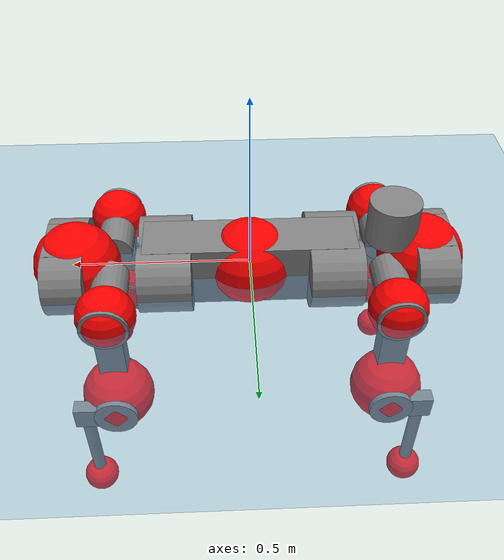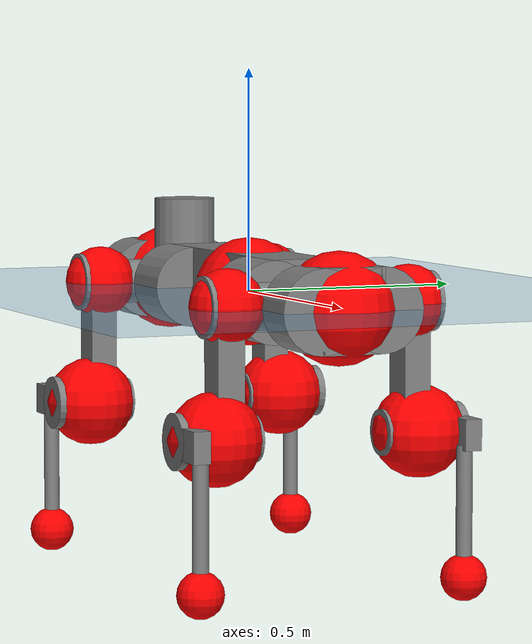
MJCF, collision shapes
<mujoco model="anymal_c">
  <compiler angle="radian" assetdir="assets" balanceinertia="true" inertiafromgeom="false"/>

  <option timestep="0.005" density="1.2" viscosity="2e-05"/>

  <size nkey="1"/>

  <visual>
    <quality shadowsize="8192"/>
    <map shadowclip="0.5"/>
  </visual>

  <default>
    <default class="/">
      <material specular="0" shininess="0.25"/>
      <geom contype="0" conaffinity="0" group="1" solref="-1000 -80"/>
      <site size="0.01 0.005 0.005" group="5"/>
      <general forcelimited="true" forcerange="-80 80" biastype="affine" gainprm="80" biasprm="0 -80 -2"/>
      <default class="anymal_c">
        <joint armature="0.01" damping="0.01" frictionloss="0.1"/>
        <default class="visual">
          <geom type="mesh" group="2"/>
          <default class="visual_zflip"/>
        </default>
        <default class="collision">
          <geom type="cylinder" group="3"/>
          <default class="foot">
            <geom size="0.03 0 0" type="sphere" condim="6" priority="1" friction="0.8 0.02 0.01" solimp="0.015 1 0.03"/>
          </default>
        </default>
      </default>
      <default class="reward_collision_sphere">
        <geom group="5" rgba="1 0 0 1"/>
      </default>
    </default>
  </default>

  <asset>
    <texture type="skybox" colorspace="auto" name="//unnamed_texture_0" builtin="gradient" rgb1="0.95 0.95 0.95" rgb2="0.95 0.95 0.95" width="100" height="600"/>
    <texture type="2d" colorspace="auto" name="texplane" builtin="checker" rgb1="0.345 0.575 0.748" rgb2="0.345 0.575 0.748" markrgb="1 1 1" width="512" height="512"/>
    <texture type="2d" colorspace="linear" name="base" file="base.png"/>
    <texture type="2d" colorspace="linear" name="top_shell" file="top_shell.png"/>
    <texture type="2d" colorspace="linear" name="bottom_shell" file="bottom_shell.png"/>
    <texture type="2d" colorspace="linear" name="remote" file="remote.png"/>
    <texture type="2d" colorspace="linear" name="hatch" file="hatch.png"/>
    <texture type="2d" colorspace="linear" name="handle" file="handle.png"/>
    <texture type="2d" colorspace="linear" name="face" file="face.png"/>
    <texture type="2d" colorspace="linear" name="battery" file="battery.png"/>
    <texture type="2d" colorspace="linear" name="lidar_cage" file="lidar_cage.png"/>
    <texture type="2d" colorspace="linear" name="depth_camera" file="depth_camera.png"/>
    <texture type="2d" colorspace="linear" name="wide_angle_camera" file="wide_angle_camera.png"/>
    <texture type="2d" colorspace="linear" name="lidar" file="lidar.png"/>
    <texture type="2d" colorspace="linear" name="drive" file="drive.png"/>
    <texture type="2d" colorspace="linear" name="hip_l" file="hip_l.png"/>
    <texture type="2d" colorspace="linear" name="shank_l" file="shank_l.png"/>
    <texture type="2d" colorspace="linear" name="foot" file="foot.png"/>
    <texture type="2d" colorspace="linear" name="thigh" file="thigh.png"/>
    <texture type="2d" colorspace="linear" name="shank_r" file="shank_r.png"/>
    <texture type="2d" colorspace="linear" name="hip_r" file="hip_r.png"/>
    <material name="MatPlane" class="/" texture="texplane" texuniform="true" texrepeat="2 2" specular="0.9" shininess="0.5"/>
    <material name="black_plastic" class="/" rgba="0.007 0.007 0.007 1"/>
    <material name="green" class="/" rgba="0.052 0.178 0.033 1"/>
    <material name="red" class="/" rgba="0.178 0.006 0.005 1"/>
    <material name="yellow" class="/" rgba="0.178 0.119 0.006 1"/>
    <material name="lwl" class="/" rgba="0.8 0.8 0.8 1"/>
    <material name="base" class="/" texture="base"/>
    <material name="top_shell" class="/" texture="top_shell"/>
    <material name="bottom_shell" class="/" texture="bottom_shell"/>
    <material name="hip_l" class="/" texture="hip_l"/>
    <material name="thigh" class="/" texture="thigh"/>
    <material name="shank_l" class="/" texture="shank_l"/>
    <material name="foot" class="/" texture="foot"/>
    <material name="hip_r" class="/" texture="hip_r"/>
    <material name="shank" class="/" texture="shank_r"/>
    <material name="hatch" class="/" texture="hatch"/>
    <material name="remote" class="/" texture="remote"/>
    <material name="handle" class="/" texture="handle"/>
    <material name="face" class="/" texture="face"/>
    <material name="depth_camera" class="/" texture="depth_camera"/>
    <material name="wide_angle_camera" class="/" texture="wide_angle_camera"/>
    <material name="battery" class="/" texture="battery"/>
    <material name="lidar_cage" class="/" texture="lidar_cage"/>
    <material name="lidar" class="/" texture="lidar"/>
    <material name="drive" class="/" texture="drive"/>
    <mesh name="base_0" class="/" file="base_0.obj"/>
    <mesh name="base_1" class="/" file="base_1.obj"/>
    <mesh name="base_2" class="/" file="base_2.obj"/>
    <mesh name="base_3" class="/" file="base_3.obj"/>
    <mesh name="base_4" class="/" file="base_4.obj"/>
    <mesh name="base_5" class="/" file="base_5.obj"/>
    <mesh name="top_shell" class="/" file="top_shell.obj"/>
    <mesh name="bottom_shell" class="/" file="bottom_shell.obj"/>
    <mesh name="remote" class="/" file="remote.obj"/>
    <mesh name="handle" class="/" file="handle.obj"/>
    <mesh name="face" class="/" file="face.obj"/>
    <mesh name="wide_angle_camera" class="/" file="wide_angle_camera.obj"/>
    <mesh name="depth_camera" class="/" file="depth_camera.obj"/>
    <mesh name="battery" class="/" file="battery.obj"/>
    <mesh name="lidar_cage" class="/" file="lidar_cage.obj"/>
    <mesh name="lidar" class="/" file="lidar.obj"/>
    <mesh name="drive" class="/" file="drive.obj"/>
    <mesh name="hip_l" class="/" file="hip_l.obj"/>
    <mesh name="thigh" class="/" file="thigh.obj"/>
    <mesh name="shank_l" class="/" file="shank_l.obj"/>
    <mesh name="foot" class="/" file="foot.obj"/>
    <mesh name="hip_r" class="/" file="hip_r.obj"/>
    <mesh name="hatch" class="/" file="hatch.obj"/>
    <mesh name="shank_r" class="/" file="shank_r.obj"/>
  </asset>

  <worldbody>
    <geom name="floor" class="/" size="100 100 0.125" type="plane" group="0" material="MatPlane"/>
    <light name="toplight_shadow" class="/" pos="0 0 5" dir="0.0990148 0.0990148 -0.990148" type="directional" ambient="0.04 0.04 0.04" diffuse="0.55 0.55 0.55" specular="0.12 0.12 0.12"/>
    <light name="toplight_fill" class="/" pos="0 0 5" dir="0.0990148 0.0990148 -0.990148" type="directional" castshadow="false" ambient="0.04 0.04 0.04" diffuse="0.3 0.3 0.3" specular="0.08 0.08 0.08"/>
    <body name="trunk" childclass="anymal_c" pos="0.00100002 0.000218911 -0.000972835" quat="1 5.04068e-05 -0.00018064 -0.000188965">
      <inertial pos="-5.37387e-05 -0.00224146 0.0486128" quat="0.49941 0.499275 0.50332 0.497979" mass="20.9182" diaginertia="0.953735 0.579763 0.205076"/>
      <joint name="//unnamed_joint_0" type="free" armature="0" damping="0" frictionloss="0"/>
      <geom name="//unnamed_geom_1" class="visual" material="green" mesh="base_0"/>
      <geom name="//unnamed_geom_2" class="visual" material="yellow" mesh="base_1"/>
      <geom name="//unnamed_geom_3" class="visual" material="red" mesh="base_2"/>
      <geom name="//unnamed_geom_4" class="visual" material="black_plastic" mesh="base_3"/>
      <geom name="//unnamed_geom_5" class="visual" material="lwl" mesh="base_4"/>
      <geom name="//unnamed_geom_6" class="visual" material="base" mesh="base_5"/>
      <geom name="trunk_1" class="collision" size="0.29552 0.0713323 0.091713" type="box"/>
      <geom name="trunk_2" class="collision" size="0.091713 0.0738799" pos="0.23544 0.0689479 0" quat="0.707107 0 0.707107 0"/>
      <geom name="trunk_3" class="collision" size="0.091713 0.0738799" pos="-0.23544 0.0689479 0" quat="0.707107 0 0.707107 0"/>
      <geom name="trunk_4" class="collision" size="0.091713 0.0738799" pos="0.23544 -0.0689479 0" quat="0.707107 0 0.707107 0"/>
      <geom name="trunk_5" class="collision" size="0.091713 0.0738799" pos="-0.23544 -0.0689479 0" quat="0.707107 0 0.707107 0"/>
      <geom name="//unnamed_geom_12" class="visual" material="top_shell" mesh="top_shell"/>
      <geom name="//unnamed_geom_13" class="visual" material="bottom_shell" mesh="bottom_shell"/>
      <geom name="//unnamed_geom_14" class="visual" material="remote" mesh="remote"/>
      <geom name="//unnamed_geom_15" class="visual" material="handle" mesh="handle"/>
      <geom name="//unnamed_geom_16" class="visual" pos="0.448689 0 0" quat="1 0 0 0" material="face" mesh="face"/>
      <geom name="trunk_6" class="collision" size="0.0560468 0.0713323 0.091713" pos="0.508225 0 0" type="box"/>
      <geom name="//unnamed_geom_18" class="collision" size="0.091713 0.0560468" pos="0.508225 0.0689479 0" quat="0.707107 0 0.707107 0"/>
      <geom name="//unnamed_geom_19" class="collision" size="0.091713 0.0560468" pos="0.508225 -0.0689479 0" quat="0.707107 0 0.707107 0"/>
      <geom name="//unnamed_geom_20" class="visual" pos="0.499724 0 -0.0281921" quat="0.965926 0 0.258819 0" material="depth_camera" mesh="depth_camera"/>
      <geom name="//unnamed_geom_21" class="visual" pos="0.555313 0 0.014815" material="wide_angle_camera" mesh="wide_angle_camera"/>
      <geom name="//unnamed_geom_22" class="visual_zflip" pos="-0.448689 0 0" quat="0 0 0 1" material="face" mesh="face"/>
      <geom name="trunk_7" class="collision" size="0.0560468 0.0713323 0.091713" pos="-0.508225 0 0" quat="0 0 0 1" type="box"/>
      <geom name="//unnamed_geom_24" class="collision" size="0.091713 0.0560468" pos="-0.508225 -0.0689479 0" quat="0 -0.707107 0 0.707107"/>
      <geom name="//unnamed_geom_25" class="collision" size="0.091713 0.0560468" pos="-0.508225 0.0689479 0" quat="0 -0.707107 0 0.707107"/>
      <geom name="//unnamed_geom_26" class="visual" pos="-0.499724 0 -0.0281921" quat="0 -0.258819 0 0.965926" material="depth_camera" mesh="depth_camera"/>
      <geom name="//unnamed_geom_27" class="visual_zflip" pos="-0.555313 0 0.014815" quat="0 0 0 1" material="wide_angle_camera" mesh="wide_angle_camera"/>
      <geom name="//unnamed_geom_28" class="visual" material="battery" mesh="battery"/>
      <geom name="//unnamed_geom_29" class="visual" pos="0 0.0740274 0.0294548" quat="0.683013 -0.183013 0.183013 0.683013" material="depth_camera" mesh="depth_camera"/>
      <geom name="//unnamed_geom_30" class="visual" pos="0 -0.0740274 0.0294548" quat="0.683013 0.183013 0.183013 -0.683013" material="depth_camera" mesh="depth_camera"/>
      <geom name="//unnamed_geom_31" class="visual" pos="-0.394023 0 0.0727391" quat="1 0 0 0" material="lidar_cage" mesh="lidar_cage"/>
      <geom name="trunk_8" class="collision" size="0.0713323 0.061142" pos="-0.394023 0 0.132118"/>
      <geom name="//unnamed_geom_33" class="visual" pos="-0.394023 -3.83097e-05 0.140728" quat="0.707107 0 0 -0.707107" material="lidar" mesh="lidar"/>
      <geom name="//unnamed_geom_34" class="visual" pos="0.324636 0.102439 -8.06759e-11" quat="0.258819 0.965926 0 0" material="drive" mesh="drive"/>
      <geom name="//unnamed_geom_35" class="visual" pos="0.324636 -0.102439 8.06759e-11" quat="0.258819 -0.965926 0 0" material="drive" mesh="drive"/>
      <geom name="//unnamed_geom_36" class="visual" pos="-0.324636 0.102439 8.06759e-11" quat="0 0 0.965926 -0.258819" material="drive" mesh="drive"/>
      <geom name="//unnamed_geom_37" class="visual" pos="-0.324636 -0.102439 -8.06759e-11" quat="0 0 -0.965926 -0.258819" material="drive" mesh="drive"/>
      <geom name="//unnamed_geom_38" class="visual" pos="0.125568 0 0.0722442" quat="1 0 0 0" material="hatch" mesh="hatch"/>
      <geom name="//unnamed_geom_39" class="reward_collision_sphere" size="0.122284"/>
      <geom name="//unnamed_geom_40" class="reward_collision_sphere" size="0.122284" pos="0.487117 0 0"/>
      <geom name="//unnamed_geom_41" class="reward_collision_sphere" size="0.122284" pos="-0.487117 0 0"/>
      <site name="imu" pos="0.281392 0.00781688 0.0337869" size="0.0101903"/>
      <camera name="track" pos="0 -1.96994 0" quat="0.707107 0.707107 0 0" mode="trackcom"/>
      <camera name="ego_camera" pos="0.487117 0 -0.0395859" quat="-0.5 -0.5 0.5 0.5"/>
      <body name="LF_HIP" pos="0.323706 0.101391 -0.00049875" quat="0.258844 0.965919 1.10231e-05 5.47888e-05">
        <inertial pos="0.0615117 -0.016146 -0.00858764" quat="-0.128195 0.70969 -0.135075 0.679456" mass="2.84153" diaginertia="0.0083922 0.00431203 0.0030286"/>
        <joint name="LF_HAA" pos="0 0 0" axis="0.999988 0.00406834 -0.00285834" range="-0.718342 0.475208" armature="0.0104041" damping="0.0122769" frictionloss="0.0973429"/>
        <geom name="//unnamed_geom_42" class="visual" pos="0 -4.7458e-06 7.79493e-07" quat="0.258819 -0.965926 0 0" material="hip_l" mesh="hip_l"/>
        <geom name="//unnamed_geom_43" class="visual" pos="0.0648407 -0.077286 -0.0446557" quat="0.183013 -0.683013 0.683013 0.183013" material="drive" mesh="drive"/>
        <geom name="//unnamed_geom_44" class="collision" size="0.0509517 0.0713323" pos="0.0648407 -0.01178 -0.00683351" quat="-0.353553 -0.612372 0.612372 -0.353553"/>
        <body name="LF_THIGH" pos="0.0651171 -0.0694373 -0.0413506" quat="0.182615 -0.683808 0.682431 0.182611">
          <inertial pos="0.0340507 1.51189e-05 -0.243034" quat="0.993179 0.00245717 -0.0823398 0.0825218" mass="3.18403" diaginertia="0.044714 0.026654 0.00389609"/>
          <joint name="LF_HFE" pos="0 0 0" axis="0.999998 0.00171931 -0.00031303" stiffness="0.00345115" range="-3.10227 3.15405" armature="0.0107163" damping="0.01621" frictionloss="0.100924"/>
          <geom name="//unnamed_geom_45" class="visual" pos="0.0019401 3.05714e-06 0" quat="0.707107 0 0 -0.707107" material="thigh" mesh="thigh"/>
          <geom name="//unnamed_geom_46" class="collision" size="0.0662371 0.0407613" pos="0.0432993 0 0" quat="0.5 0.5 -0.5 -0.5"/>
          <geom name="//unnamed_geom_47" class="collision" size="0.0382137 0.030571 0.144004" pos="0.0324745 0 -0.139851" quat="0.707107 0 0 -0.707107" type="box"/>
          <geom name="//unnamed_geom_48" class="visual" pos="0.108573 0 -0.282049" quat="1 0 0 0" material="drive" mesh="drive"/>
          <geom name="//unnamed_geom_49" class="collision" size="0.0509517 0.0713323" pos="0.0327992 0 -0.282049" quat="0.707107 0 0.707107 0"/>
          <geom name="//unnamed_geom_50" class="reward_collision_sphere" size="0.0815226" pos="0.027062 0 0"/>
          <body name="LF_SHANK" pos="0.108415 0.00183765 -0.283021" quat="1 -2.96489e-05 2.40133e-05 -0.00041385">
            <inertial pos="0.00616679 -0.0611337 -0.0794798" quat="0.992996 -0.115318 -0.000633795 -0.0256937" mass="0.624413" diaginertia="0.0148308 0.00865795 0.00105871"/>
            <joint name="LF_KFE" pos="0 0 0" axis="1 0.000342885 0.000605352" range="-3.12513 3.13291" armature="0.00970919" damping="0.0120421" frictionloss="0.100528"/>
            <geom name="//unnamed_geom_51" class="visual" pos="0.000632624 0.00337318 0" quat="0.707107 0 0 -0.707107" material="shank_l" mesh="shank_l"/>
            <geom name="LF_kfe_act" class="collision" size="0.061142 0.0203807" pos="0.0216496 0 0" quat="0.5 0.5 -0.5 -0.5"/>
            <geom name="//unnamed_geom_53" class="collision" size="0.0585934 0.0343924 0.0193616" pos="0.0216496 -0.0566348 0" quat="0.5 0.5 -0.5 -0.5" type="box"/>
            <geom name="//unnamed_geom_54" class="visual" pos="0.0141262 -0.0855411 -0.334471" quat="0.382683 0 0 -0.92388" material="foot" mesh="foot"/>
            <geom name="LF_calf" class="collision" size="0.0178331 0.14394" pos="0.0141264 -0.0866281 -0.167236" quat="0.707107 0 0 -0.707107"/>
            <geom name="LF_foot" class="foot" size="0.0300805" pos="0.0141264 -0.0866281 -0.312204" quat="0.707107 0 0 -0.707107"/>
            <geom name="//unnamed_geom_57" class="reward_collision_sphere" size="0.101903" pos="-0.0541241 0 0"/>
            <geom name="//unnamed_geom_58" class="reward_collision_sphere" size="0.0509517" pos="0.0141264 -0.0866281 -0.312204"/>
            <site name="LF_foot" class="foot" pos="0.0141264 -0.0866281 -0.312204" quat="0.707107 0 0 -0.707107" size="0.0101903"/>
          </body>
        </body>
      </body>
      <body name="RF_HIP" pos="0.322735 -0.10248 0.0015435" quat="0.258928 -0.965897 0.000118755 -3.32093e-05">
        <inertial pos="0.0608825 0.0128259 -0.00915289" quat="0.13765 0.678308 0.14043 0.707976" mass="2.90949" diaginertia="0.0084846 0.00467602 0.00305354"/>
        <joint name="RF_HAA" pos="0 0 0" axis="0.999979 -0.00559908 0.00316461" range="-0.497178 0.717176" armature="0.0102008" damping="0.00266304" frictionloss="0.0973011"/>
        <geom name="//unnamed_geom_59" class="visual" pos="0 4.74576e-06 7.79491e-07" quat="0.258819 0.965926 0 0" material="hip_r" mesh="hip_r"/>
        <geom name="//unnamed_geom_60" class="visual" pos="0.0648407 0.077286 -0.0446557" quat="0.183013 0.683013 0.683013 -0.183013" material="drive" mesh="drive"/>
        <geom name="//unnamed_geom_61" class="collision" size="0.0509517 0.0713323" pos="0.0648407 0.01178 -0.00683351" quat="-0.353553 0.612372 0.612372 0.353553"/>
        <body name="RF_THIGH" pos="0.0651937 0.0718319 -0.0436454" quat="0.183746 0.683114 0.682765 -0.182822">
          <inertial pos="0.0358813 0.0010178 -0.242936" quat="0.992816 -0.0053211 -0.0817282 0.0872252" mass="3.34049" diaginertia="0.0449313 0.0272499 0.00412301"/>
          <joint name="RF_HFE" pos="0 0 0" axis="0.999999 -0.00119982 -0.000687528" stiffness="8.63161e-05" range="-3.16164 3.1491" armature="0.00983712" damping="0.0117385" frictionloss="0.0984289"/>
          <geom name="//unnamed_geom_62" class="visual" pos="0.0019401 3.05714e-06 0" quat="0.707107 0 0 -0.707107" material="thigh" mesh="thigh"/>
          <geom name="//unnamed_geom_63" class="collision" size="0.0662371 0.0407613" pos="0.0432993 0 0" quat="0.5 0.5 0.5 0.5"/>
          <geom name="//unnamed_geom_64" class="collision" size="0.0382137 0.030571 0.144004" pos="0.0324745 0 -0.139851" quat="0.707107 0 0 0.707107" type="box"/>
          <geom name="//unnamed_geom_65" class="visual" pos="0.108573 0 -0.282049" quat="1 0 0 0" material="drive" mesh="drive"/>
          <geom name="//unnamed_geom_66" class="collision" size="0.0509517 0.0713323" pos="0.0327992 0 -0.282049" quat="0.707107 0 0.707107 0"/>
          <geom name="//unnamed_geom_67" class="reward_collision_sphere" size="0.0815226" pos="0.027062 0 0"/>
          <body name="RF_SHANK" pos="0.107939 -0.000520801 -0.280757" quat="1 0.000105413 -2.68834e-05 -3.17128e-05">
            <inertial pos="0.00467926 0.0604484 -0.0795644" quat="0.993042 0.112677 -0.0113489 0.0323031" mass="0.637944" diaginertia="0.0152752 0.00879139 0.00108257"/>
            <joint name="RF_KFE" pos="0 0 0" axis="1 -7.87014e-06 -3.47151e-05" range="-3.18355 3.12728" armature="0.0111607" damping="0.0211043" frictionloss="0.0993026"/>
            <geom name="//unnamed_geom_68" class="visual" pos="0.000632621 -0.00337318 0" quat="0.707107 0 0 0.707107" material="shank" mesh="shank_r"/>
            <geom name="RF_kfe_act" class="collision" size="0.061142 0.0203807" pos="0.0216496 0 0" quat="0.5 0.5 0.5 0.5"/>
            <geom name="//unnamed_geom_70" class="collision" size="0.0585934 0.0343924 0.0193616" pos="0.0216496 0.0566348 0" quat="0.5 0.5 0.5 0.5" type="box"/>
            <geom name="//unnamed_geom_71" class="visual" pos="0.0141265 0.0855411 -0.334471" quat="0.382683 0 0 0.92388" material="foot" mesh="foot"/>
            <geom name="RF_calf" class="collision" size="0.0178331 0.14394" pos="0.0141264 0.0866281 -0.167236" quat="0.707107 0 0 0.707107"/>
            <geom name="RF_foot" class="foot" size="0.02788" pos="0.0141264 0.0866281 -0.312204" quat="0.707107 0 0 0.707107"/>
            <geom name="//unnamed_geom_74" class="reward_collision_sphere" size="0.101903" pos="-0.0541241 0 0"/>
            <geom name="//unnamed_geom_75" class="reward_collision_sphere" size="0.0509517" pos="0.0141264 0.0866281 -0.312204"/>
            <site name="RF_foot" class="foot" pos="0.0141264 0.0866281 -0.312204" quat="0.707107 0 0 0.707107" size="0.0101903"/>
          </body>
        </body>
      </body>
      <body name="LH_HIP" pos="-0.321732 0.101612 -0.000854863" quat="0.000214226 -8.46662e-05 0.965974 -0.258641">
        <inertial pos="0.0615863 0.0157781 -0.0108001" quat="0.138783 0.674383 0.123715 0.714591" mass="3.0289" diaginertia="0.00927003 0.00475128 0.00321933"/>
        <joint name="LH_HAA" pos="0 0 0" axis="0.999944 0.00890494 0.00575519" range="-0.489958 0.704337" armature="0.0101068" damping="0" frictionloss="0.101352"/>
        <geom name="//unnamed_geom_76" class="visual" pos="0 4.74576e-06 7.79491e-07" quat="-0.258819 -0.965926 0 0" material="hip_r" mesh="hip_r"/>
        <geom name="//unnamed_geom_77" class="visual" pos="0.0648407 0.077286 -0.0446557" quat="0.183013 0.683013 0.683013 -0.183013" material="drive" mesh="drive"/>
        <geom name="//unnamed_geom_78" class="collision" size="0.0509517 0.0713323" pos="0.0648407 0.01178 -0.00683351" quat="-0.353553 0.612372 0.612372 0.353553"/>
        <body name="LH_THIGH" pos="0.0646144 0.0715467 -0.0429278" quat="0.183578 0.683015 0.682805 -0.183214">
          <inertial pos="0.0308152 -0.00110219 -0.24548" quat="0.99286 -0.00426987 -0.0811548 0.0873166" mass="3.23228" diaginertia="0.0428825 0.0276934 0.00387162"/>
          <joint name="LH_HFE" pos="0 0 0" axis="0.999998 9.67399e-05 -0.00190342" stiffness="0.00674453" range="-3.14009 3.12274" armature="0.00983495" damping="0.00115592" frictionloss="0.101336"/>
          <geom name="//unnamed_geom_79" class="visual" pos="0.0019401 3.05714e-06 0" quat="0.707107 0 0 -0.707107" material="thigh" mesh="thigh"/>
          <geom name="//unnamed_geom_80" class="collision" size="0.0662371 0.0407613" pos="0.0432993 0 0" quat="0.5 0.5 -0.5 -0.5"/>
          <geom name="//unnamed_geom_81" class="collision" size="0.0382137 0.030571 0.144004" pos="0.0324745 0 -0.139851" quat="0.707107 0 0 -0.707107" type="box"/>
          <geom name="//unnamed_geom_82" class="visual" pos="0.108573 0 -0.282049" quat="1 0 0 0" material="drive" mesh="drive"/>
          <geom name="//unnamed_geom_83" class="collision" size="0.0509517 0.0713323" pos="0.0327992 0 -0.282049" quat="0.707107 0 0.707107 0"/>
          <geom name="//unnamed_geom_84" class="reward_collision_sphere" size="0.0815226" pos="0.027062 0 0"/>
          <body name="LH_SHANK" pos="0.109 -0.001858 -0.28066" quat="1 4.80955e-06 -0.000139436 -7.3378e-05">
            <inertial pos="0.00577243 0.0624056 -0.0787858" quat="0.993228 0.113811 -0.00030204 0.0233584" mass="0.643179" diaginertia="0.0154152 0.00907552 0.00108271"/>
            <joint name="LH_KFE" pos="0 0 0" axis="0.999986 0.000569541 0.00525065" range="-3.10466 3.11942" armature="0.0114147" damping="0.0208259" frictionloss="0.0923152"/>
            <geom name="//unnamed_geom_85" class="visual" pos="0.000632621 -0.00337318 0" quat="-0.707107 0 0 -0.707107" material="shank" mesh="shank_r"/>
            <geom name="LH_kfe_act" class="collision" size="0.061142 0.0203807" pos="0.0216496 0 0" quat="0.5 0.5 -0.5 -0.5"/>
            <geom name="//unnamed_geom_87" class="collision" size="0.0585934 0.0343924 0.0193616" pos="0.0216496 0.0566348 0" quat="0.5 0.5 -0.5 -0.5" type="box"/>
            <geom name="//unnamed_geom_88" class="visual" pos="0.0141265 0.0855411 -0.334471" quat="-0.382683 0 0 -0.92388" material="foot" mesh="foot"/>
            <geom name="LH_calf" class="collision" size="0.0178331 0.14394" pos="0.0141264 0.0866281 -0.167236" quat="0.707107 0 0 -0.707107"/>
            <geom name="LH_foot" class="foot" size="0.0310644" pos="0.0141264 0.0866281 -0.312204" quat="0.707107 0 0 -0.707107"/>
            <geom name="//unnamed_geom_91" class="reward_collision_sphere" size="0.101903" pos="-0.0541241 0 0"/>
            <geom name="//unnamed_geom_92" class="reward_collision_sphere" size="0.0509517" pos="0.0141264 0.0866281 -0.312204"/>
            <site name="LH_foot" class="foot" pos="0.0141264 0.0866281 -0.312204" quat="0.707107 0 0 -0.707107" size="0.0101903"/>
          </body>
        </body>
      </body>
      <body name="RH_HIP" pos="-0.321951 -0.102912 9.98808e-05" quat="0.000178761 -9.93437e-05 -0.965916 -0.258857">
        <inertial pos="0.0609376 -0.0151859 -0.0109347" quat="-0.119792 0.716981 -0.130319 0.674244" mass="2.91382" diaginertia="0.00844489 0.00439591 0.00301915"/>
        <joint name="RH_HAA" pos="0 0 0" axis="0.999915 -0.0123519 0.00419565" range="-0.769067 0.493411" armature="0.0105217" damping="0.00936588" frictionloss="0.101395"/>
        <geom name="//unnamed_geom_93" class="visual" pos="0 -4.7458e-06 7.79493e-07" quat="-0.258819 0.965926 0 0" material="hip_l" mesh="hip_l"/>
        <geom name="//unnamed_geom_94" class="visual" pos="0.0648407 -0.077286 -0.0446557" quat="-0.183013 0.683013 -0.683013 -0.183013" material="drive" mesh="drive"/>
        <geom name="//unnamed_geom_95" class="collision" size="0.0509517 0.0713323" pos="0.0648407 -0.01178 -0.00683351" quat="0.353553 0.612372 -0.612372 0.353553"/>
        <body name="RH_THIGH" pos="0.0672456 -0.0719536 -0.043534" quat="-0.183282 0.683119 -0.683059 -0.182173">
          <inertial pos="0.0339897 0.000224172 -0.243908" quat="0.993242 -0.00431764 -0.0799158 0.0840603" mass="3.16559" diaginertia="0.0437804 0.0273222 0.00393866"/>
          <joint name="RH_HFE" pos="0 0 0" axis="0.999992 0.00144888 0.00366364" stiffness="0.00245947" range="-3.13232 3.16298" armature="0.0104249" damping="0.00801463" frictionloss="0.102464"/>
          <geom name="//unnamed_geom_96" class="visual" pos="0.0019401 3.05714e-06 0" quat="0.707107 0 0 -0.707107" material="thigh" mesh="thigh"/>
          <geom name="//unnamed_geom_97" class="collision" size="0.0662371 0.0407613" pos="0.0432993 0 0" quat="0.5 0.5 0.5 0.5"/>
          <geom name="//unnamed_geom_98" class="collision" size="0.0382137 0.030571 0.144004" pos="0.0324745 0 -0.139851" quat="0.707107 0 0 0.707107" type="box"/>
          <geom name="//unnamed_geom_99" class="visual" pos="0.108573 0 -0.282049" quat="1 0 0 0" material="drive" mesh="drive"/>
          <geom name="//unnamed_geom_100" class="collision" size="0.0509517 0.0713323" pos="0.0327992 0 -0.282049" quat="0.707107 0 0.707107 0"/>
          <geom name="//unnamed_geom_101" class="reward_collision_sphere" size="0.0815226" pos="0.027062 0 0"/>
          <body name="RH_SHANK" pos="0.10817 0.00208113 -0.28173" quat="0.999999 -0.000533277 -0.000681645 -0.000778684">
            <inertial pos="0.00784692 -0.0596154 -0.080876" quat="0.993461 -0.112561 0.00149927 -0.0190454" mass="0.635143" diaginertia="0.0151617 0.00857304 0.00106926"/>
            <joint name="RH_KFE" pos="0 0 0" axis="0.999995 0.00298305 -0.000652121" range="-3.13024 3.18057" armature="0.0101541" damping="0.0210749" frictionloss="0.0991017"/>
            <geom name="//unnamed_geom_102" class="visual" pos="0.000632624 0.00337318 0" quat="0.707107 0 0 -0.707107" material="shank_l" mesh="shank_l"/>
            <geom name="RH_kfe_act" class="collision" size="0.061142 0.0203807" pos="0.0216496 0 0" quat="0.5 0.5 0.5 0.5"/>
            <geom name="//unnamed_geom_104" class="collision" size="0.0585934 0.0343924 0.0193616" pos="0.0216496 -0.0566348 0" quat="0.5 0.5 0.5 0.5" type="box"/>
            <geom name="//unnamed_geom_105" class="visual" pos="0.0141262 -0.0855411 -0.334471" quat="0.382683 0 0 -0.92388" material="foot" mesh="foot"/>
            <geom name="RH_calf" class="collision" size="0.0178331 0.14394" pos="0.0141264 -0.0866281 -0.167236" quat="0.707107 0 0 0.707107"/>
            <geom name="RH_foot" class="foot" size="0.0280954" pos="0.0141264 -0.0866281 -0.312204" quat="0.707107 0 0 0.707107"/>
            <geom name="//unnamed_geom_108" class="reward_collision_sphere" size="0.101903" pos="-0.0541241 0 0"/>
            <geom name="//unnamed_geom_109" class="reward_collision_sphere" size="0.0509517" pos="0.0141264 -0.0866281 -0.312204"/>
            <site name="RH_foot" class="foot" pos="0.0141264 -0.0866281 -0.312204" quat="0.707107 0 0 0.707107" size="0.0101903"/>
          </body>
        </body>
      </body>
    </body>
  </worldbody>

  <contact>
    <pair class="/" geom1="floor" geom2="LF_foot" name="//unnamed_contact_0"/>
    <pair class="/" geom1="floor" geom2="RF_foot" name="//unnamed_contact_1"/>
    <pair class="/" geom1="floor" geom2="LH_foot" name="//unnamed_contact_2"/>
    <pair class="/" geom1="floor" geom2="RH_foot" name="//unnamed_contact_3"/>
  </contact>

  <actuator>
    <general name="LF_HAA" class="/" joint="LF_HAA" forcerange="-77.9137 77.9137" gainprm="81.6914" biasprm="0 -81.6914 -1.99641"/>
    <general name="LF_HFE" class="/" joint="LF_HFE" forcerange="-73.9378 73.9378" gainprm="81.6914" biasprm="0 -81.6914 -1.99641"/>
    <general name="LF_KFE" class="/" joint="LF_KFE" forcerange="-84.9814 84.9814" gainprm="81.6914" biasprm="0 -81.6914 -1.99641"/>
    <general name="RF_HAA" class="/" joint="RF_HAA" forcerange="-83.8707 83.8707" gainprm="81.6914" biasprm="0 -81.6914 -1.99641"/>
    <general name="RF_HFE" class="/" joint="RF_HFE" forcerange="-87.3975 87.3975" gainprm="81.6914" biasprm="0 -81.6914 -1.99641"/>
    <general name="RF_KFE" class="/" joint="RF_KFE" forcerange="-83.5666 83.5666" gainprm="81.6914" biasprm="0 -81.6914 -1.99641"/>
    <general name="LH_HAA" class="/" joint="LH_HAA" forcerange="-81.3311 81.3311" gainprm="81.6914" biasprm="0 -81.6914 -1.99641"/>
    <general name="LH_HFE" class="/" joint="LH_HFE" forcerange="-78.4097 78.4097" gainprm="81.6914" biasprm="0 -81.6914 -1.99641"/>
    <general name="LH_KFE" class="/" joint="LH_KFE" forcerange="-80.1053 80.1053" gainprm="81.6914" biasprm="0 -81.6914 -1.99641"/>
    <general name="RH_HAA" class="/" joint="RH_HAA" forcerange="-80.7921 80.7921" gainprm="81.6914" biasprm="0 -81.6914 -1.99641"/>
    <general name="RH_HFE" class="/" joint="RH_HFE" forcerange="-88.5341 88.5341" gainprm="81.6914" biasprm="0 -81.6914 -1.99641"/>
    <general name="RH_KFE" class="/" joint="RH_KFE" forcerange="-79.0292 79.0292" gainprm="81.6914" biasprm="0 -81.6914 -1.99641"/>
  </actuator>

  <sensor>
    <gyro site="imu" name="imu_angular_velocity"/>
    <velocimeter site="imu" name="imu_linear_velocity"/>
    <framelinvel objtype="site" objname="LF_foot" name="LF_foot_global_linear_velocity"/>
    <framelinvel objtype="site" objname="RF_foot" name="RF_foot_global_linear_velocity"/>
    <framelinvel objtype="site" objname="LH_foot" name="LH_foot_global_linear_velocity"/>
    <framelinvel objtype="site" objname="RH_foot" name="RH_foot_global_linear_velocity"/>
  </sensor>

  <keyframe>
    <key name="home" qpos="0 0 0.55 1 0 0 0 0 0.4 -0.8 0 -0.4 0.8 0 -0.4 0.8 0 0.4 -0.8"/>
  </keyframe>
</mujoco>
